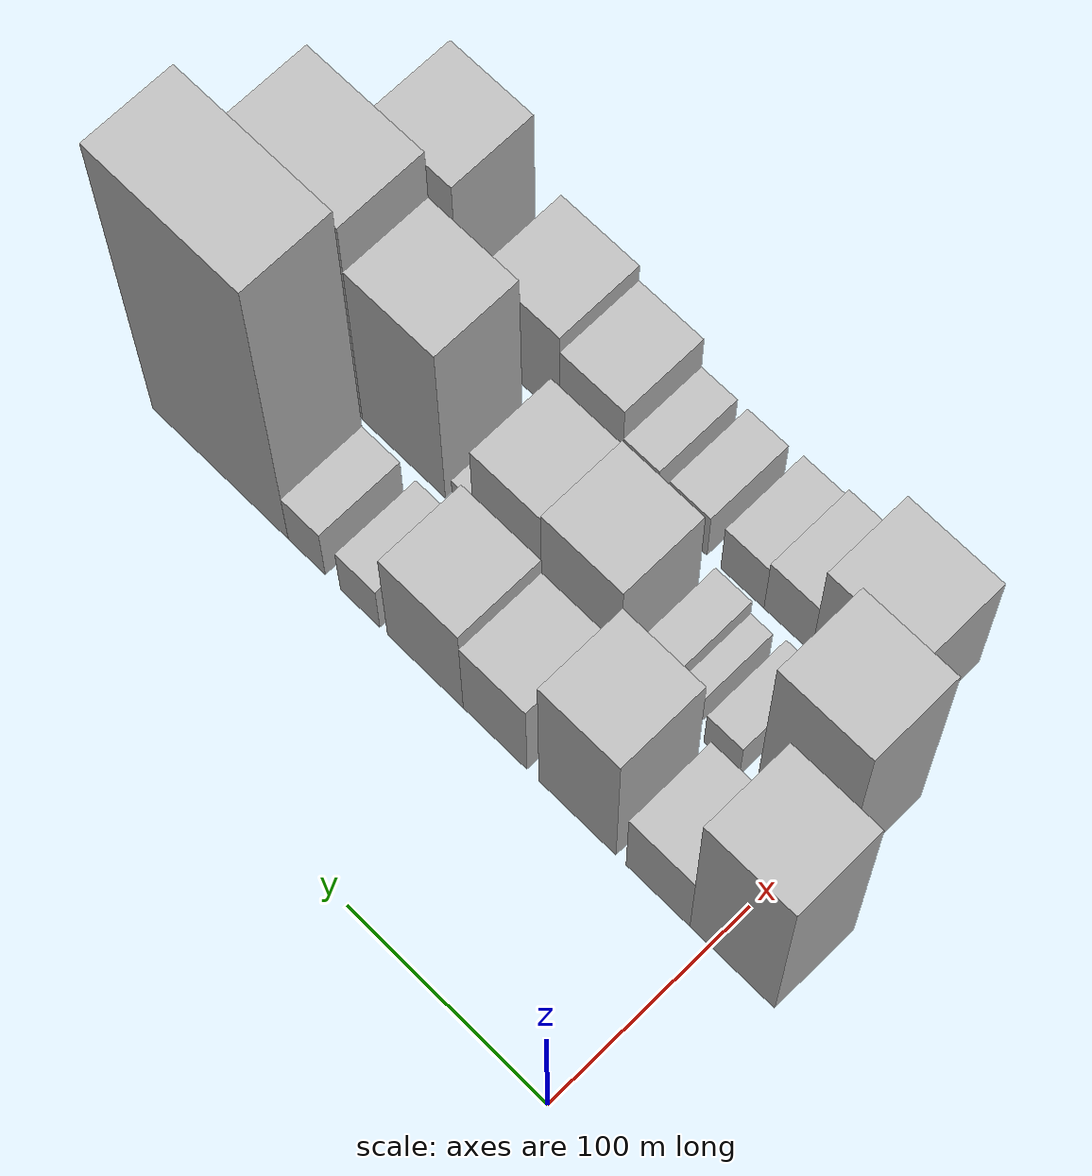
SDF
<sdf version="1.6">
 <world name="default">
  <model name="building_17">
   <static>1</static>
   <pose>100.0000 -10.8562 0 0.000000 0.000000 0.000000</pose>
   <link name="link">
    <pose>0 0 61.50 0 0 0</pose>
    <collision name="collision"><geometry><box><size>40.0000 41.2940 123.0000</size></box></geometry></collision>
    <visual name="visual">
     <cast_shadows>0</cast_shadows>
     <geometry><box><size>40.0000 41.2940 123.0000</size></box></geometry>
     <material>
      <script>
       <uri>model://HANNAS_wall/materials/scripts</uri>
       <uri>model://HANNAS_wall/materials/textures</uri>
       <name>vrc/HANNAS_wall</name>
      </script>
     </material>
    </visual>
   </link>
  </model>
  <model name="building_18">
   <static>1</static>
   <pose>100.0000 25.5710 0 0.000000 0.000000 0.000000</pose>
   <link name="link">
    <pose>0 0 27.00 0 0 0</pose>
    <collision name="collision"><geometry><box><size>40.0000 31.5603 54.0000</size></box></geometry></collision>
    <visual name="visual">
     <cast_shadows>0</cast_shadows>
     <geometry><box><size>40.0000 31.5603 54.0000</size></box></geometry>
     <material>
      <script>
       <uri>model://HANNAS_wall/materials/scripts</uri>
       <uri>model://HANNAS_wall/materials/textures</uri>
       <name>vrc/HANNAS_wall</name>
      </script>
     </material>
    </visual>
   </link>
  </model>
  <model name="building_19">
   <static>1</static>
   <pose>100.0000 65.7155 0 0.000000 0.000000 0.000000</pose>
   <link name="link">
    <pose>0 0 51.00 0 0 0</pose>
    <collision name="collision"><geometry><box><size>40.0000 38.7289 102.0000</size></box></geometry></collision>
    <visual name="visual">
     <cast_shadows>0</cast_shadows>
     <geometry><box><size>40.0000 38.7289 102.0000</size></box></geometry>
     <material>
      <script>
       <uri>model://HANNAS_wall/materials/scripts</uri>
       <uri>model://HANNAS_wall/materials/textures</uri>
       <name>vrc/HANNAS_wall</name>
      </script>
     </material>
    </visual>
   </link>
  </model>
  <model name="building_20">
   <static>1</static>
   <pose>100.0000 107.3781 0 0.000000 0.000000 0.000000</pose>
   <link name="link">
    <pose>0 0 31.50 0 0 0</pose>
    <collision name="collision"><geometry><box><size>40.0000 32.5962 63.0000</size></box></geometry></collision>
    <visual name="visual">
     <cast_shadows>0</cast_shadows>
     <geometry><box><size>40.0000 32.5962 63.0000</size></box></geometry>
     <material>
      <script>
       <uri>model://HANNAS_wall/materials/scripts</uri>
       <uri>model://HANNAS_wall/materials/textures</uri>
       <name>vrc/HANNAS_wall</name>
      </script>
     </material>
    </visual>
   </link>
  </model>
  <model name="building_21">
   <static>1</static>
   <pose>100.0000 143.3019 0 0.000000 0.000000 0.000000</pose>
   <link name="link">
    <pose>0 0 37.50 0 0 0</pose>
    <collision name="collision"><geometry><box><size>40.0000 39.2515 75.0000</size></box></geometry></collision>
    <visual name="visual">
     <cast_shadows>0</cast_shadows>
     <geometry><box><size>40.0000 39.2515 75.0000</size></box></geometry>
     <material>
      <script>
       <uri>model://HANNAS_wall/materials/scripts</uri>
       <uri>model://HANNAS_wall/materials/textures</uri>
       <name>vrc/HANNAS_wall</name>
      </script>
     </material>
    </visual>
   </link>
  </model>
  <model name="building_22">
   <static>1</static>
   <pose>100.0000 177.2840 0 0.000000 0.000000 0.000000</pose>
   <link name="link">
    <pose>0 0 18.00 0 0 0</pose>
    <collision name="collision"><geometry><box><size>40.0000 20.7128 36.0000</size></box></geometry></collision>
    <visual name="visual">
     <cast_shadows>0</cast_shadows>
     <geometry><box><size>40.0000 20.7128 36.0000</size></box></geometry>
     <material>
      <script>
       <uri>model://HANNAS_wall/materials/scripts</uri>
       <uri>model://HANNAS_wall/materials/textures</uri>
       <name>vrc/HANNAS_wall</name>
      </script>
     </material>
    </visual>
   </link>
  </model>
  <model name="building_23">
   <static>1</static>
   <pose>100.0000 205.4724 0 0.000000 0.000000 0.000000</pose>
   <link name="link">
    <pose>0 0 19.50 0 0 0</pose>
    <collision name="collision"><geometry><box><size>40.0000 19.6639 39.0000</size></box></geometry></collision>
    <visual name="visual">
     <cast_shadows>0</cast_shadows>
     <geometry><box><size>40.0000 19.6639 39.0000</size></box></geometry>
     <material>
      <script>
       <uri>model://HANNAS_wall/materials/scripts</uri>
       <uri>model://HANNAS_wall/materials/textures</uri>
       <name>vrc/HANNAS_wall</name>
      </script>
     </material>
    </visual>
   </link>
  </model>
  <model name="building_24">
   <static>1</static>
   <pose>100.0000 251.9849 0 0.000000 0.000000 0.000000</pose>
   <link name="link">
    <pose>0 0 105.00 0 0 0</pose>
    <collision name="collision"><geometry><box><size>40.0000 73.3611 210.0000</size></box></geometry></collision>
    <visual name="visual">
     <cast_shadows>0</cast_shadows>
     <geometry><box><size>40.0000 73.3611 210.0000</size></box></geometry>
     <material>
      <script>
       <uri>model://HANNAS_wall/materials/scripts</uri>
       <uri>model://HANNAS_wall/materials/textures</uri>
       <name>vrc/HANNAS_wall</name>
      </script>
     </material>
    </visual>
   </link>
  </model>
  <model name="building_49">
   <static>1</static>
   <pose>152.0000 6.5699 0 0.000000 0.000000 0.000000</pose>
   <link name="link">
    <pose>0 0 66.00 0 0 0</pose>
    <collision name="collision"><geometry><box><size>40.0000 42.9942 132.0000</size></box></geometry></collision>
    <visual name="visual">
     <cast_shadows>0</cast_shadows>
     <geometry><box><size>40.0000 42.9942 132.0000</size></box></geometry>
     <material>
      <script>
       <uri>model://HANNAS_wall/materials/scripts</uri>
       <uri>model://HANNAS_wall/materials/textures</uri>
       <name>vrc/HANNAS_wall</name>
      </script>
     </material>
    </visual>
   </link>
  </model>
  <model name="building_50">
   <static>1</static>
   <pose>152.0000 44.9130 0 0.000000 0.000000 0.000000</pose>
   <link name="link">
    <pose>0 0 15.00 0 0 0</pose>
    <collision name="collision"><geometry><box><size>40.0000 17.6921 30.0000</size></box></geometry></collision>
    <visual name="visual">
     <cast_shadows>0</cast_shadows>
     <geometry><box><size>40.0000 17.6921 30.0000</size></box></geometry>
     <material>
      <script>
       <uri>model://HANNAS_wall/materials/scripts</uri>
       <uri>model://HANNAS_wall/materials/textures</uri>
       <name>vrc/HANNAS_wall</name>
      </script>
     </material>
    </visual>
   </link>
  </model>
  <model name="building_51">
   <static>1</static>
   <pose>152.0000 65.2904 0 0.000000 0.000000 0.000000</pose>
   <link name="link">
    <pose>0 0 12.00 0 0 0</pose>
    <collision name="collision"><geometry><box><size>40.0000 11.0626 24.0000</size></box></geometry></collision>
    <visual name="visual">
     <cast_shadows>0</cast_shadows>
     <geometry><box><size>40.0000 11.0626 24.0000</size></box></geometry>
     <material>
      <script>
       <uri>model://HANNAS_wall/materials/scripts</uri>
       <uri>model://HANNAS_wall/materials/textures</uri>
       <name>vrc/HANNAS_wall</name>
      </script>
     </material>
    </visual>
   </link>
  </model>
  <model name="building_52">
   <static>1</static>
   <pose>152.0000 79.8577 0 0.000000 0.000000 0.000000</pose>
   <link name="link">
    <pose>0 0 18.00 0 0 0</pose>
    <collision name="collision"><geometry><box><size>40.0000 18.0720 36.0000</size></box></geometry></collision>
    <visual name="visual">
     <cast_shadows>0</cast_shadows>
     <geometry><box><size>40.0000 18.0720 36.0000</size></box></geometry>
     <material>
      <script>
       <uri>model://HANNAS_wall/materials/scripts</uri>
       <uri>model://HANNAS_wall/materials/textures</uri>
       <name>vrc/HANNAS_wall</name>
      </script>
     </material>
    </visual>
   </link>
  </model>
  <model name="building_53">
   <static>1</static>
   <pose>152.0000 116.0636 0 0.000000 0.000000 0.000000</pose>
   <link name="link">
    <pose>0 0 36.00 0 0 0</pose>
    <collision name="collision"><geometry><box><size>40.0000 40.3400 72.0000</size></box></geometry></collision>
    <visual name="visual">
     <cast_shadows>0</cast_shadows>
     <geometry><box><size>40.0000 40.3400 72.0000</size></box></geometry>
     <material>
      <script>
       <uri>model://HANNAS_wall/materials/scripts</uri>
       <uri>model://HANNAS_wall/materials/textures</uri>
       <name>vrc/HANNAS_wall</name>
      </script>
     </material>
    </visual>
   </link>
  </model>
  <model name="building_54">
   <static>1</static>
   <pose>152.0000 153.8333 0 0.000000 0.000000 0.000000</pose>
   <link name="link">
    <pose>0 0 34.50 0 0 0</pose>
    <collision name="collision"><geometry><box><size>40.0000 35.1993 69.0000</size></box></geometry></collision>
    <visual name="visual">
     <cast_shadows>0</cast_shadows>
     <geometry><box><size>40.0000 35.1993 69.0000</size></box></geometry>
     <material>
      <script>
       <uri>model://HANNAS_wall/materials/scripts</uri>
       <uri>model://HANNAS_wall/materials/textures</uri>
       <name>vrc/HANNAS_wall</name>
      </script>
     </material>
    </visual>
   </link>
  </model>
  <model name="building_55">
   <static>1</static>
   <pose>152.0000 176.9388 0 0.000000 0.000000 0.000000</pose>
   <link name="link">
    <pose>0 0 12.00 0 0 0</pose>
    <collision name="collision"><geometry><box><size>40.0000 11.0118 24.0000</size></box></geometry></collision>
    <visual name="visual">
     <cast_shadows>0</cast_shadows>
     <geometry><box><size>40.0000 11.0118 24.0000</size></box></geometry>
     <material>
      <script>
       <uri>model://HANNAS_wall/materials/scripts</uri>
       <uri>model://HANNAS_wall/materials/textures</uri>
       <name>vrc/HANNAS_wall</name>
      </script>
     </material>
    </visual>
   </link>
  </model>
  <model name="building_56">
   <static>1</static>
   <pose>152.0000 208.4596 0 0.000000 0.000000 0.000000</pose>
   <link name="link">
    <pose>0 0 63.00 0 0 0</pose>
    <collision name="collision"><geometry><box><size>40.0000 44.0297 126.0000</size></box></geometry></collision>
    <visual name="visual">
     <cast_shadows>0</cast_shadows>
     <geometry><box><size>40.0000 44.0297 126.0000</size></box></geometry>
     <material>
      <script>
       <uri>model://HANNAS_wall/materials/scripts</uri>
       <uri>model://HANNAS_wall/materials/textures</uri>
       <name>vrc/HANNAS_wall</name>
      </script>
     </material>
    </visual>
   </link>
  </model>
  <model name="building_57">
   <static>1</static>
   <pose>152.0000 258.8494 0 0.000000 0.000000 0.000000</pose>
   <link name="link">
    <pose>0 0 79.50 0 0 0</pose>
    <collision name="collision"><geometry><box><size>40.0000 56.7500 159.0000</size></box></geometry></collision>
    <visual name="visual">
     <cast_shadows>0</cast_shadows>
     <geometry><box><size>40.0000 56.7500 159.0000</size></box></geometry>
     <material>
      <script>
       <uri>model://HANNAS_wall/materials/scripts</uri>
       <uri>model://HANNAS_wall/materials/textures</uri>
       <name>vrc/HANNAS_wall</name>
      </script>
     </material>
    </visual>
   </link>
  </model>
  <model name="building_89">
   <static>1</static>
   <pose>204.0000 27.5929 0 0.000000 0.000000 0.000000</pose>
   <link name="link">
    <pose>0 0 40.50 0 0 0</pose>
    <collision name="collision"><geometry><box><size>40.0000 45.4122 81.0000</size></box></geometry></collision>
    <visual name="visual">
     <cast_shadows>0</cast_shadows>
     <geometry><box><size>40.0000 45.4122 81.0000</size></box></geometry>
     <material>
      <script>
       <uri>model://HANNAS_wall/materials/scripts</uri>
       <uri>model://HANNAS_wall/materials/textures</uri>
       <name>vrc/HANNAS_wall</name>
      </script>
     </material>
    </visual>
   </link>
  </model>
  <model name="building_90">
   <static>1</static>
   <pose>204.0000 62.1825 0 0.000000 0.000000 0.000000</pose>
   <link name="link">
    <pose>0 0 22.50 0 0 0</pose>
    <collision name="collision"><geometry><box><size>40.0000 23.7669 45.0000</size></box></geometry></collision>
    <visual name="visual">
     <cast_shadows>0</cast_shadows>
     <geometry><box><size>40.0000 23.7669 45.0000</size></box></geometry>
     <material>
      <script>
       <uri>model://HANNAS_wall/materials/scripts</uri>
       <uri>model://HANNAS_wall/materials/textures</uri>
       <name>vrc/HANNAS_wall</name>
      </script>
     </material>
    </visual>
   </link>
  </model>
  <model name="building_91">
   <static>1</static>
   <pose>204.0000 85.0063 0 0.000000 0.000000 0.000000</pose>
   <link name="link">
    <pose>0 0 19.50 0 0 0</pose>
    <collision name="collision"><geometry><box><size>40.0000 21.8808 39.0000</size></box></geometry></collision>
    <visual name="visual">
     <cast_shadows>0</cast_shadows>
     <geometry><box><size>40.0000 21.8808 39.0000</size></box></geometry>
     <material>
      <script>
       <uri>model://HANNAS_wall/materials/scripts</uri>
       <uri>model://HANNAS_wall/materials/textures</uri>
       <name>vrc/HANNAS_wall</name>
      </script>
     </material>
    </visual>
   </link>
  </model>
  <model name="building_92">
   <static>1</static>
   <pose>204.0000 113.2065 0 0.000000 0.000000 0.000000</pose>
   <link name="link">
    <pose>0 0 18.00 0 0 0</pose>
    <collision name="collision"><geometry><box><size>40.0000 20.5196 36.0000</size></box></geometry></collision>
    <visual name="visual">
     <cast_shadows>0</cast_shadows>
     <geometry><box><size>40.0000 20.5196 36.0000</size></box></geometry>
     <material>
      <script>
       <uri>model://HANNAS_wall/materials/scripts</uri>
       <uri>model://HANNAS_wall/materials/textures</uri>
       <name>vrc/HANNAS_wall</name>
      </script>
     </material>
    </visual>
   </link>
  </model>
  <model name="building_93">
   <static>1</static>
   <pose>204.0000 137.5691 0 0.000000 0.000000 0.000000</pose>
   <link name="link">
    <pose>0 0 18.00 0 0 0</pose>
    <collision name="collision"><geometry><box><size>40.0000 18.2056 36.0000</size></box></geometry></collision>
    <visual name="visual">
     <cast_shadows>0</cast_shadows>
     <geometry><box><size>40.0000 18.2056 36.0000</size></box></geometry>
     <material>
      <script>
       <uri>model://HANNAS_wall/materials/scripts</uri>
       <uri>model://HANNAS_wall/materials/textures</uri>
       <name>vrc/HANNAS_wall</name>
      </script>
     </material>
    </visual>
   </link>
  </model>
  <model name="building_94">
   <static>1</static>
   <pose>204.0000 162.9406 0 0.000000 0.000000 0.000000</pose>
   <link name="link">
    <pose>0 0 30.00 0 0 0</pose>
    <collision name="collision"><geometry><box><size>40.0000 32.5374 60.0000</size></box></geometry></collision>
    <visual name="visual">
     <cast_shadows>0</cast_shadows>
     <geometry><box><size>40.0000 32.5374 60.0000</size></box></geometry>
     <material>
      <script>
       <uri>model://HANNAS_wall/materials/scripts</uri>
       <uri>model://HANNAS_wall/materials/textures</uri>
       <name>vrc/HANNAS_wall</name>
      </script>
     </material>
    </visual>
   </link>
  </model>
  <model name="building_95">
   <static>1</static>
   <pose>204.0000 198.9019 0 0.000000 0.000000 0.000000</pose>
   <link name="link">
    <pose>0 0 36.00 0 0 0</pose>
    <collision name="collision"><geometry><box><size>40.0000 39.3852 72.0000</size></box></geometry></collision>
    <visual name="visual">
     <cast_shadows>0</cast_shadows>
     <geometry><box><size>40.0000 39.3852 72.0000</size></box></geometry>
     <material>
      <script>
       <uri>model://HANNAS_wall/materials/scripts</uri>
       <uri>model://HANNAS_wall/materials/textures</uri>
       <name>vrc/HANNAS_wall</name>
      </script>
     </material>
    </visual>
   </link>
  </model>
  <model name="building_96">
   <static>1</static>
   <pose>204.0000 223.8638 0 0.000000 0.000000 0.000000</pose>
   <link name="link">
    <pose>0 0 12.00 0 0 0</pose>
    <collision name="collision"><geometry><box><size>40.0000 10.5386 24.0000</size></box></geometry></collision>
    <visual name="visual">
     <cast_shadows>0</cast_shadows>
     <geometry><box><size>40.0000 10.5386 24.0000</size></box></geometry>
     <material>
      <script>
       <uri>model://HANNAS_wall/materials/scripts</uri>
       <uri>model://HANNAS_wall/materials/textures</uri>
       <name>vrc/HANNAS_wall</name>
      </script>
     </material>
    </visual>
   </link>
  </model>
  <model name="building_97">
   <static>1</static>
   <pose>204.0000 252.9284 0 0.000000 0.000000 0.000000</pose>
   <link name="link">
    <pose>0 0 57.00 0 0 0</pose>
    <collision name="collision"><geometry><box><size>40.0000 41.5904 114.0000</size></box></geometry></collision>
    <visual name="visual">
     <cast_shadows>0</cast_shadows>
     <geometry><box><size>40.0000 41.5904 114.0000</size></box></geometry>
     <material>
      <script>
       <uri>model://HANNAS_wall/materials/scripts</uri>
       <uri>model://HANNAS_wall/materials/textures</uri>
       <name>vrc/HANNAS_wall</name>
      </script>
     </material>
    </visual>
   </link>
  </model>
 </world>
</sdf>
